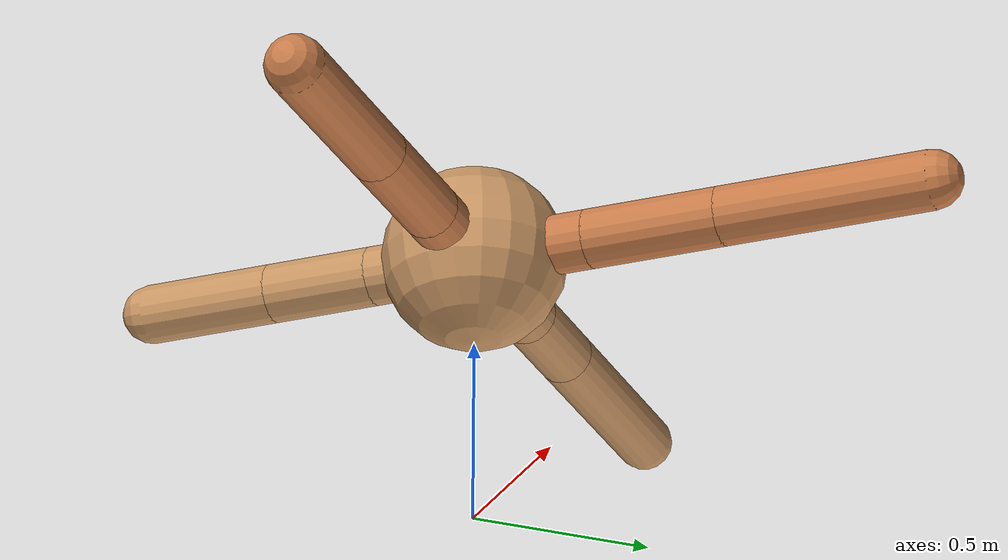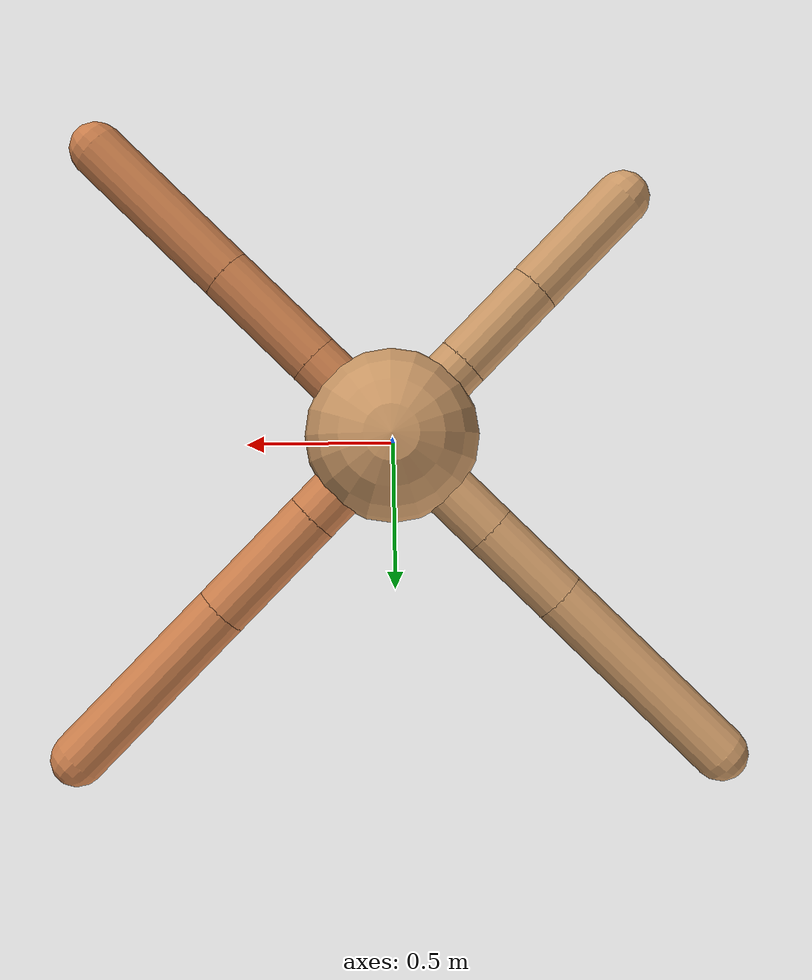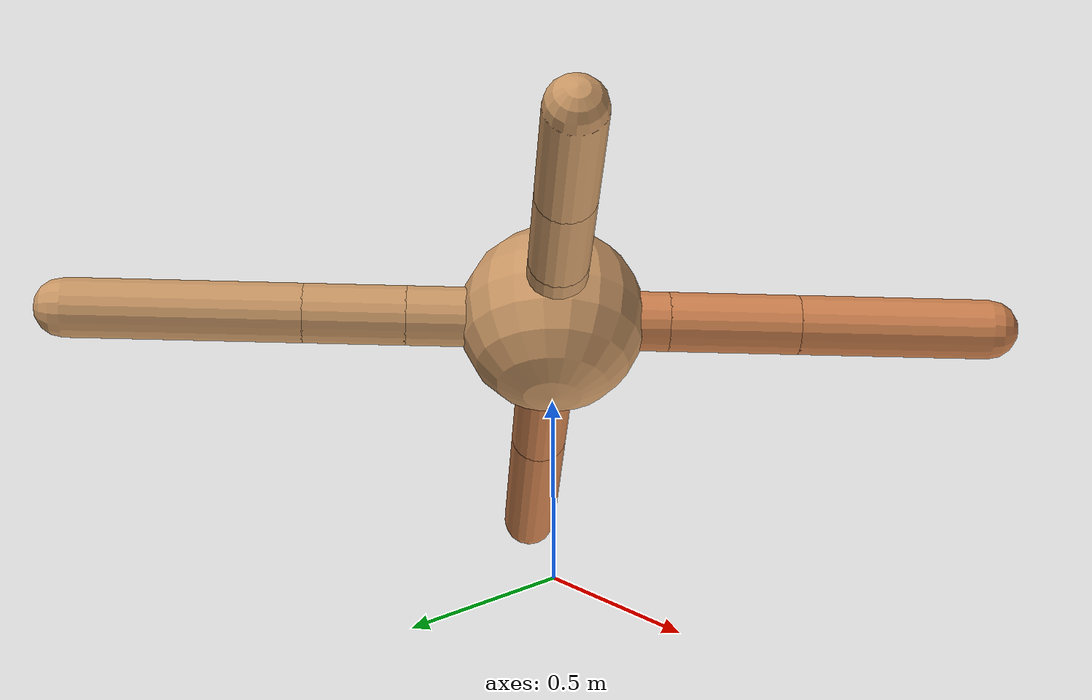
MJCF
<mujoco model="ant">
  <compiler angle="degree" coordinate="local" inertiafromgeom="true" />
  <option integrator="RK4" timestep="0.01" />
  <custom>
    <numeric data="0.0 0.0 0.55 1.0 0.0 0.0 0.0 0.0 1.0 0.0 -1.0 0.0 -1.0 0.0 1.0" name="init_qpos" />
  </custom>
  <default>
    <joint armature="1" damping="1" limited="true" />
    <geom conaffinity="0" condim="3" density="5.0" friction="1.5 0.1 0.1" margin="0.01" rgba="0.8 0.6 0.4 1" />
  </default>
  <worldbody>
    <body name="torso" pos="0 0 0.75">
      <geom name="torso_geom" pos="0 0 0" size="0.25" type="sphere" />

      <body name="front_left_leg" pos="0 0 0">
        <geom fromto="0.0 0.0 0.0 0.23180343480553509 0.23180343480553509 0.0" name="aux_1_geom" size="0.08" type="capsule" rgba=".8 .5 .3 1" />
        <body name="aux_1" pos="0.23180343480553509 0.23180343480553509 0.0">
          <joint axis="0 0 1" name="hip_1" pos="0.0 0.0 0.0" range="-40 40" type="hinge" />
          <geom fromto="0.0 0.0 0.0 0.2617286112588543 0.2617286112588543 0.0" name="left_leg_geom" size="0.08" type="capsule" rgba=".8 .5 .3 1" />
          <body pos="0.2617286112588543 0.2617286112588543 0.0" name="front_left_foot">
            <joint axis="-1 1 0" name="ankle_1" pos="0.0 0.0 0.0" range="30 100" type="hinge" />
            <geom fromto="0.0 0.0 0.0 0.41049136615807513 0.41049136615807513 0.0" name="left_ankle_geom" size="0.08" type="capsule" rgba=".8 .5 .3 1" />
          </body>
        </body>
      </body>
      <body name="front_right_leg" pos="0 0 0">
        <geom fromto="0.0 0.0 0.0 -0.2754432099446586 0.2754432099446586 0.0" name="aux_2_geom" size="0.08" type="capsule" />
        <body name="aux_2" pos="-0.2754432099446586 0.2754432099446586 0.0">
          <joint axis="0 0 1" name="hip_2" pos="0.0 0.0 0.0" range="-40 40" type="hinge" />
          <geom fromto="0.0 0.0 0.0 -0.19341877445509836 0.19341877445509836 0.0" name="right_leg_geom" size="0.08" type="capsule" />
          <body pos="-0.19341877445509836 0.19341877445509836 0.0" name="front_right_foot">
            <joint axis="1 1 0" name="ankle_2" pos="0.0 0.0 0.0" range="-100 -30" type="hinge" />
            <geom fromto="0.0 0.0 0.0 -0.4475055435154589 0.4475055435154589 0.0" name="right_ankle_geom" size="0.08" type="capsule" />
          </body>
        </body>
      </body>
      <body name="left_back_leg" pos="0 0 0">
        <geom fromto="0.0 0.0 0.0 -0.20554362053882538 -0.20554362053882538 0.0" name="aux_3_geom" size="0.08" type="capsule" />
        <body name="aux_3" pos="-0.20554362053882538 -0.20554362053882538 0.0">
          <joint axis="0 0 1" name="hip_3" pos="0.0 0.0 0.0" range="-40 40" type="hinge" />
          <geom fromto="0.0 0.0 0.0 -0.20814510239411113 -0.20814510239411113 0.0" name="back_leg_geom" size="0.08" type="capsule" />
          <body pos="-0.20814510239411113 -0.20814510239411113 0.0" name="left_back_foot">
            <joint axis="-1 1 0" name="ankle_3" pos="0.0 0.0 0.0" range="-100 -30" type="hinge" />
            <geom fromto="0.0 0.0 0.0 -0.25559812943093835 -0.25559812943093835 0.0" name="third_ankle_geom" size="0.08" type="capsule" />
          </body>
        </body>
      </body>
      <body name="right_back_leg" pos="0 0 0">
        <geom fromto="0.0 0.0 0.0 0.22005783889411143 -0.22005783889411143 0.0" name="aux_4_geom" size="0.08" type="capsule" rgba=".8 .5 .3 1" />
        <body name="aux_4" pos="0.22005783889411143 -0.22005783889411143 0.0">
          <joint axis="0 0 1" name="hip_4" pos="0.0 0.0 0.0" range="-40 40" type="hinge" />
          <geom fromto="0.0 0.0 0.0 0.24733674065649122 -0.24733674065649122 0.0" name="rightback_leg_geom" size="0.08" type="capsule" rgba=".8 .5 .3 1" />
          <body pos="0.24733674065649122 -0.24733674065649122 0.0" name="right_back_foot">
            <joint axis="1 1 0" name="ankle_4" pos="0.0 0.0 0.0" range="30 100" type="hinge" />
            <geom fromto="0.0 0.0 0.0 0.3655878043158046 -0.3655878043158046 0.0" name="fourth_ankle_geom" size="0.08" type="capsule" rgba=".8 .5 .3 1" />
          </body>
        </body>
      </body>
    </body>
  </worldbody>
  <actuator>
    <motor ctrllimited="true" ctrlrange="-1.0 1.0" joint="hip_4" gear="150" />
    <motor ctrllimited="true" ctrlrange="-1.0 1.0" joint="ankle_4" gear="150" />
    <motor ctrllimited="true" ctrlrange="-1.0 1.0" joint="hip_1" gear="150" />
    <motor ctrllimited="true" ctrlrange="-1.0 1.0" joint="ankle_1" gear="150" />
    <motor ctrllimited="true" ctrlrange="-1.0 1.0" joint="hip_2" gear="150" />
    <motor ctrllimited="true" ctrlrange="-1.0 1.0" joint="ankle_2" gear="150" />
    <motor ctrllimited="true" ctrlrange="-1.0 1.0" joint="hip_3" gear="150" />
    <motor ctrllimited="true" ctrlrange="-1.0 1.0" joint="ankle_3" gear="150" />
  </actuator>
</mujoco>
